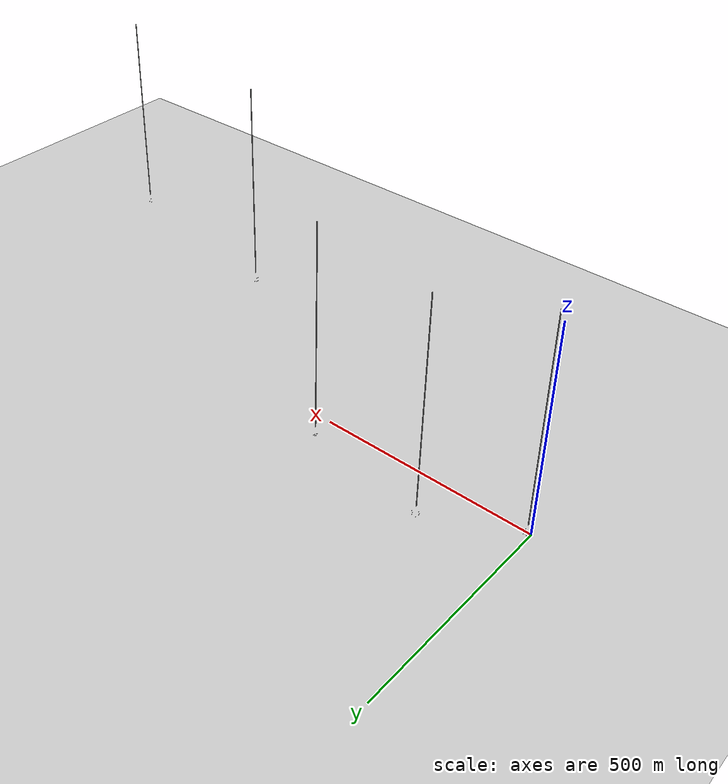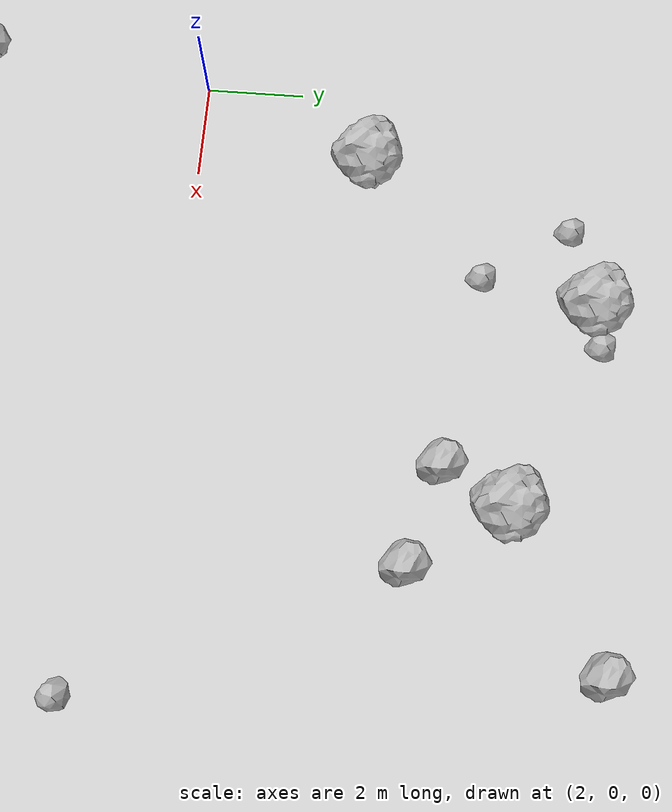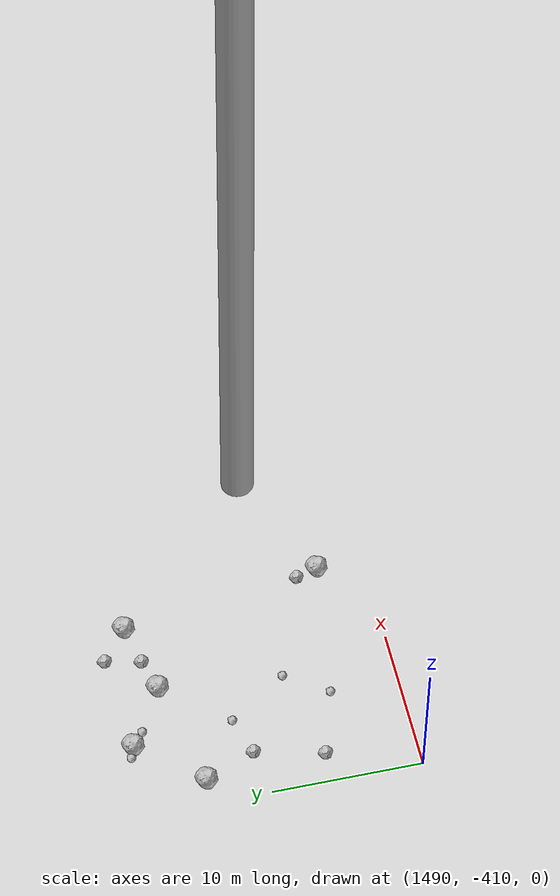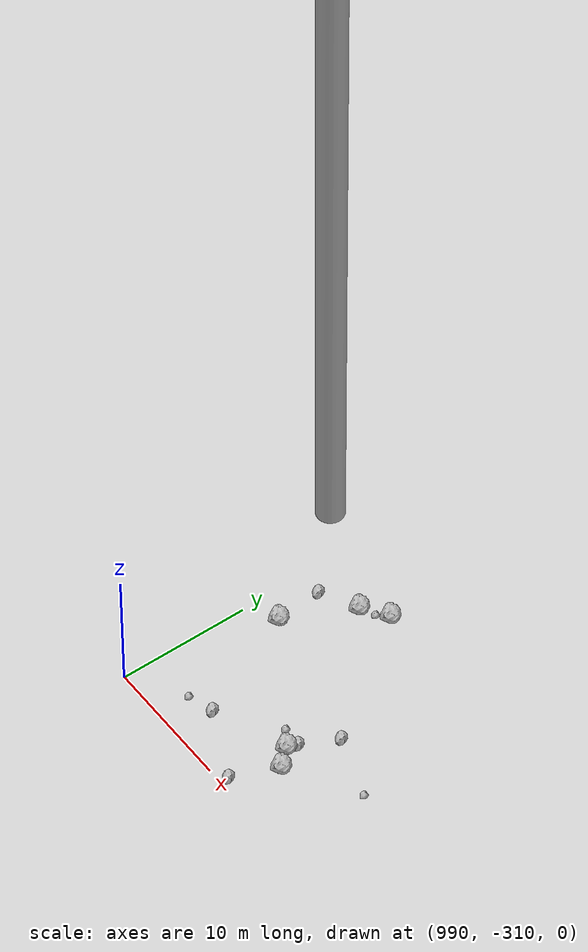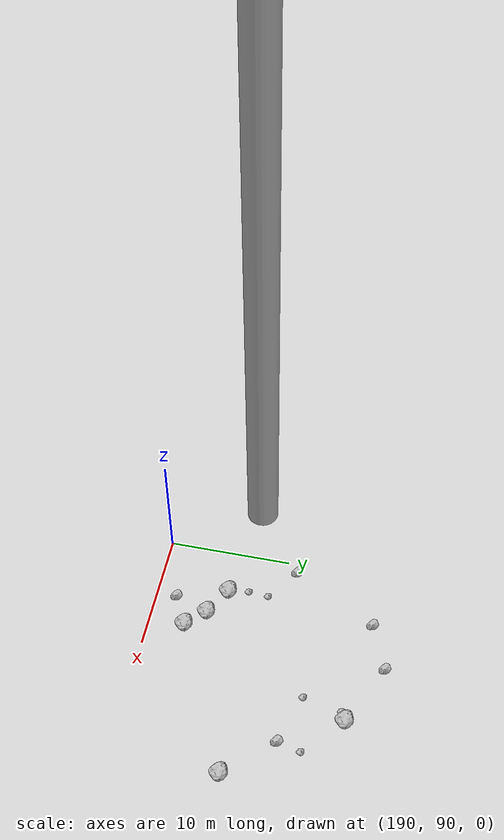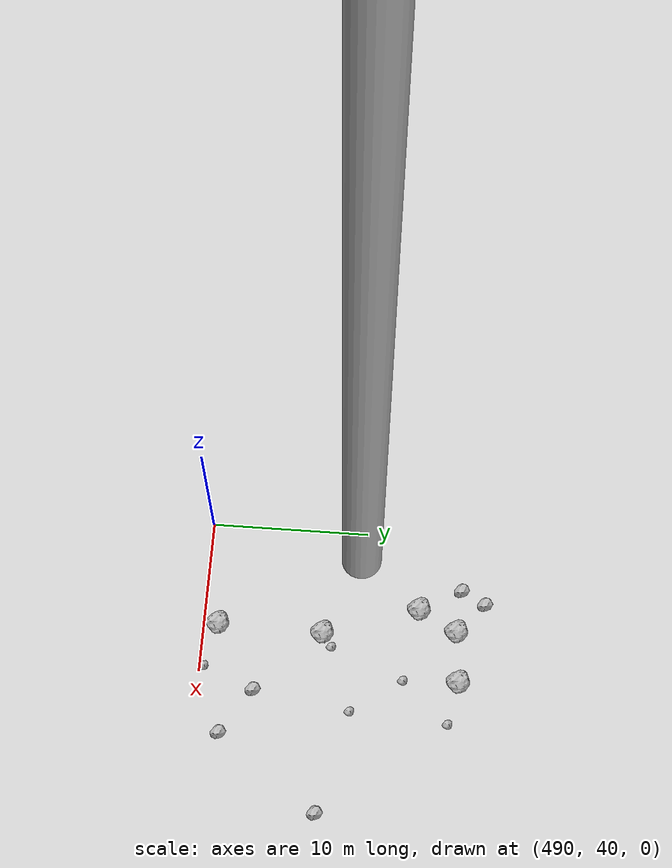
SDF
<?xml version="1.0" ?>
<sdf version="1.6">
  <world name="default">

    <include>
      <uri>model://custom_ground</uri>
    </include>

    <include>
      <uri>model://sun</uri>
    </include>

    <spherical_coordinates>
      <surface_model>EARTH_WGS84</surface_model>
      <latitude_deg>38.161479</latitude_deg>
      <longitude_deg>-122.454630</longitude_deg>
      <elevation>488.0</elevation>
      <heading_deg>90</heading_deg>
    </spherical_coordinates>

    <model name="rock1_0_0">
      <include>
        <uri>model://rock1</uri>
        <pose>6.4729485477745925 8.17944199042487 0.5 0 0 0</pose>
      </include>
    </model>
    <model name="rock1_0_1">
      <include>
        <uri>model://rock1</uri>
        <pose>7.802292365282204 -8.955085867270379 0.5 0 0 0</pose>
      </include>
    </model>
    <model name="rock1_0_2">
      <include>
        <uri>model://rock1</uri>
        <pose>10.700904663249549 6.660742370795877 0.5 0 0 0</pose>
      </include>
    </model>
    <model name="rock1_0_3">
      <include>
        <uri>model://rock1</uri>
        <pose>16.52597437280943 -5.5340290364576195 0.5 0 0 0</pose>
      </include>
    </model>
    <model name="rock1_0_4">
      <include>
        <uri>model://rock1</uri>
        <pose>3.557331634425709 3.4643379551292774 0.5 0 0 0</pose>
      </include>
    </model>
    <model name="rock2_0_0">
      <include>
        <uri>model://rock2</uri>
        <pose>11.895251033619612 4.796920991674918 0.3 0 0 0</pose>
      </include>
    </model>
    <model name="rock2_0_1">
      <include>
        <uri>model://rock2</uri>
        <pose>1.3663902439959785 -4.766722542907087 0.3 0 0 0</pose>
      </include>
    </model>
    <model name="rock2_0_2">
      <include>
        <uri>model://rock2</uri>
        <pose>11.91989134865618 -7.49626740748093 0.3 0 0 0</pose>
      </include>
    </model>
    <model name="rock2_0_3">
      <include>
        <uri>model://rock2</uri>
        <pose>9.890118101921804 5.36994191891675 0.3 0 0 0</pose>
      </include>
    </model>
    <model name="rock2_0_4">
      <include>
        <uri>model://rock2</uri>
        <pose>13.698772273124685 8.560021871865466 0.3 0 0 0</pose>
      </include>
    </model>
    <model name="rock3_0_0">
      <include>
        <uri>model://rock3</uri>
        <pose>14.73504711529486 -1.4024015628625204 0.2 0 0 0</pose>
      </include>
    </model>
    <model name="rock3_0_1">
      <include>
        <uri>model://rock3</uri>
        <pose>7.281230380828387 8.347130511355282 0.2 0 0 0</pose>
      </include>
    </model>
    <model name="rock3_0_2">
      <include>
        <uri>model://rock3</uri>
        <pose>8.830609864610054 -4.895311287984305 0.2 0 0 0</pose>
      </include>
    </model>
    <model name="rock3_0_3">
      <include>
        <uri>model://rock3</uri>
        <pose>4.826071262134057 7.680133074776059 0.2 0 0 0</pose>
      </include>
    </model>
    <model name="rock3_0_4">
      <include>
        <uri>model://rock3</uri>
        <pose>5.960465594441963 5.932363768196865 0.2 0 0 0</pose>
      </include>
    </model>
    <model name="rock1_1_0">
      <include>
        <uri>model://rock1</uri>
        <pose>209.79594746012745 98.60497167441494 0.5 0 0 0</pose>
      </include>
    </model>
    <model name="rock1_1_1">
      <include>
        <uri>model://rock1</uri>
        <pose>193.96344192900025 95.69330140887264 0.5 0 0 0</pose>
      </include>
    </model>
    <model name="rock1_1_2">
      <include>
        <uri>model://rock1</uri>
        <pose>197.7389055860168 92.90591280119105 0.5 0 0 0</pose>
      </include>
    </model>
    <model name="rock1_1_3">
      <include>
        <uri>model://rock1</uri>
        <pose>196.25607644888598 94.40709636472424 0.5 0 0 0</pose>
      </include>
    </model>
    <model name="rock1_1_4">
      <include>
        <uri>model://rock1</uri>
        <pose>203.661343208187 107.0090305846403 0.5 0 0 0</pose>
      </include>
    </model>
    <model name="rock2_1_0">
      <include>
        <uri>model://rock2</uri>
        <pose>194.70621206016764 107.8213366234203 0.3 0 0 0</pose>
      </include>
    </model>
    <model name="rock2_1_1">
      <include>
        <uri>model://rock2</uri>
        <pose>206.3207296553488 102.33066980479306 0.3 0 0 0</pose>
      </include>
    </model>
    <model name="rock2_1_2">
      <include>
        <uri>model://rock2</uri>
        <pose>190.9251826464805 100.92357443562287 0.3 0 0 0</pose>
      </include>
    </model>
    <model name="rock2_1_3">
      <include>
        <uri>model://rock2</uri>
        <pose>198.51621813819798 109.38756583490786 0.3 0 0 0</pose>
      </include>
    </model>
    <model name="rock2_1_4">
      <include>
        <uri>model://rock2</uri>
        <pose>195.17934006078053 91.67344029935262 0.3 0 0 0</pose>
      </include>
    </model>
    <model name="rock3_1_0">
      <include>
        <uri>model://rock3</uri>
        <pose>202.83607288607678 106.63683890202671 0.2 0 0 0</pose>
      </include>
    </model>
    <model name="rock3_1_1">
      <include>
        <uri>model://rock3</uri>
        <pose>193.5743503915914 97.3270806312434 0.2 0 0 0</pose>
      </include>
    </model>
    <model name="rock3_1_2">
      <include>
        <uri>model://rock3</uri>
        <pose>193.67398153468991 98.96748143281238 0.2 0 0 0</pose>
      </include>
    </model>
    <model name="rock3_1_3">
      <include>
        <uri>model://rock3</uri>
        <pose>202.20973887334054 103.51066436020761 0.2 0 0 0</pose>
      </include>
    </model>
    <model name="rock3_1_4">
      <include>
        <uri>model://rock3</uri>
        <pose>206.78195654525237 104.20062761423787 0.2 0 0 0</pose>
      </include>
    </model>
    <model name="rock1_2_0">
      <include>
        <uri>model://rock1</uri>
        <pose>495.1401527329163 53.52427917520167 0.5 0 0 0</pose>
      </include>
    </model>
    <model name="rock1_2_1">
      <include>
        <uri>model://rock1</uri>
        <pose>499.7841519240271 56.17960816049455 0.5 0 0 0</pose>
      </include>
    </model>
    <model name="rock1_2_2">
      <include>
        <uri>model://rock1</uri>
        <pose>496.89729160775414 40.919038467633634 0.5 0 0 0</pose>
      </include>
    </model>
    <model name="rock1_2_3">
      <include>
        <uri>model://rock1</uri>
        <pose>496.4812218612903 55.9320742571808 0.5 0 0 0</pose>
      </include>
    </model>
    <model name="rock1_2_4">
      <include>
        <uri>model://rock1</uri>
        <pose>497.0826795279739 47.52634575649451 0.5 0 0 0</pose>
      </include>
    </model>
    <model name="rock2_2_0">
      <include>
        <uri>model://rock2</uri>
        <pose>501.0112428926839 43.506350938951016 0.3 0 0 0</pose>
      </include>
    </model>
    <model name="rock2_2_1">
      <include>
        <uri>model://rock2</uri>
        <pose>503.89221657747805 41.63768973066354 0.3 0 0 0</pose>
      </include>
    </model>
    <model name="rock2_2_2">
      <include>
        <uri>model://rock2</uri>
        <pose>494.4523412512377 57.706265704232834 0.3 0 0 0</pose>
      </include>
    </model>
    <model name="rock2_2_3">
      <include>
        <uri>model://rock2</uri>
        <pose>508.52468878492357 47.92920243312202 0.3 0 0 0</pose>
      </include>
    </model>
    <model name="rock2_2_4">
      <include>
        <uri>model://rock2</uri>
        <pose>493.61015779702217 56.20033340093187 0.3 0 0 0</pose>
      </include>
    </model>
    <model name="rock3_2_0">
      <include>
        <uri>model://rock3</uri>
        <pose>499.7935756648087 52.73500965697544 0.2 0 0 0</pose>
      </include>
    </model>
    <model name="rock3_2_1">
      <include>
        <uri>model://rock3</uri>
        <pose>502.43596380848885 55.64094333550074 0.2 0 0 0</pose>
      </include>
    </model>
    <model name="rock3_2_2">
      <include>
        <uri>model://rock3</uri>
        <pose>497.87311073776783 48.141954863804145 0.2 0 0 0</pose>
      </include>
    </model>
    <model name="rock3_2_3">
      <include>
        <uri>model://rock3</uri>
        <pose>499.63370481802 40.27139465190556 0.2 0 0 0</pose>
      </include>
    </model>
    <model name="rock3_2_4">
      <include>
        <uri>model://rock3</uri>
        <pose>502.0078225457438 49.54895483048956 0.2 0 0 0</pose>
      </include>
    </model>
    <model name="rock1_3_0">
      <include>
        <uri>model://rock1</uri>
        <pose>1002.7351178061875 -306.05673626551084 0.5 0 0 0</pose>
      </include>
    </model>
    <model name="rock1_3_1">
      <include>
        <uri>model://rock1</uri>
        <pose>994.8253198237597 -293.5769934520015 0.5 0 0 0</pose>
      </include>
    </model>
    <model name="rock1_3_2">
      <include>
        <uri>model://rock1</uri>
        <pose>996.6994001528071 -292.2921537357399 0.5 0 0 0</pose>
      </include>
    </model>
    <model name="rock1_3_3">
      <include>
        <uri>model://rock1</uri>
        <pose>1001.5786210367341 -304.77408524067084 0.5 0 0 0</pose>
      </include>
    </model>
    <model name="rock1_3_4">
      <include>
        <uri>model://rock1</uri>
        <pose>992.2859584376602 -298.60652955143036 0.5 0 0 0</pose>
      </include>
    </model>
    <model name="rock2_3_0">
      <include>
        <uri>model://rock2</uri>
        <pose>991.9908193932906 -295.0142362568821 0.3 0 0 0</pose>
      </include>
    </model>
    <model name="rock2_3_1">
      <include>
        <uri>model://rock2</uri>
        <pose>1001.2900507979209 -309.41783211303465 0.3 0 0 0</pose>
      </include>
    </model>
    <model name="rock2_3_2">
      <include>
        <uri>model://rock2</uri>
        <pose>996.0423557840285 -306.958407695686 0.3 0 0 0</pose>
      </include>
    </model>
    <model name="rock2_3_3">
      <include>
        <uri>model://rock2</uri>
        <pose>1003.1784079281227 -301.3610585410941 0.3 0 0 0</pose>
      </include>
    </model>
    <model name="rock2_3_4">
      <include>
        <uri>model://rock2</uri>
        <pose>1001.8310796860029 -304.0074622677005 0.3 0 0 0</pose>
      </include>
    </model>
    <model name="rock3_3_0">
      <include>
        <uri>model://rock3</uri>
        <pose>1007.8473708989507 -302.9929283791208 0.2 0 0 0</pose>
      </include>
    </model>
    <model name="rock3_3_1">
      <include>
        <uri>model://rock3</uri>
        <pose>995.8741628393342 -293.03562725429555 0.2 0 0 0</pose>
      </include>
    </model>
    <model name="rock3_3_2">
      <include>
        <uri>model://rock3</uri>
        <pose>994.0304327450519 -307.53265049407327 0.2 0 0 0</pose>
      </include>
    </model>
    <model name="rock3_3_3">
      <include>
        <uri>model://rock3</uri>
        <pose>1000.2256583888224 -303.90710877156835 0.2 0 0 0</pose>
      </include>
    </model>
    <model name="rock3_3_4">
      <include>
        <uri>model://rock3</uri>
        <pose>1002.6039324147673 -306.2826069365397 0.2 0 0 0</pose>
      </include>
    </model>
    <model name="rock1_4_0">
      <include>
        <uri>model://rock1</uri>
        <pose>1506.3269150955489 -406.7531894069118 0.5 0 0 0</pose>
      </include>
    </model>
    <model name="rock1_4_1">
      <include>
        <uri>model://rock1</uri>
        <pose>1499.2995546428208 -394.4218425891547 0.5 0 0 0</pose>
      </include>
    </model>
    <model name="rock1_4_2">
      <include>
        <uri>model://rock1</uri>
        <pose>1495.2427638025638 -391.98564813795326 0.5 0 0 0</pose>
      </include>
    </model>
    <model name="rock1_4_3">
      <include>
        <uri>model://rock1</uri>
        <pose>1491.7674159052463 -396.0720371549458 0.5 0 0 0</pose>
      </include>
    </model>
    <model name="rock1_4_4">
      <include>
        <uri>model://rock1</uri>
        <pose>1504.3080302624376 -393.16846045799326 0.5 0 0 0</pose>
      </include>
    </model>
    <model name="rock2_4_0">
      <include>
        <uri>model://rock2</uri>
        <pose>1502.013047563214 -391.4393636370219 0.3 0 0 0</pose>
      </include>
    </model>
    <model name="rock2_4_1">
      <include>
        <uri>model://rock2</uri>
        <pose>1493.116520706356 -399.4610374862874 0.3 0 0 0</pose>
      </include>
    </model>
    <model name="rock2_4_2">
      <include>
        <uri>model://rock2</uri>
        <pose>1505.8412963663568 -405.2764801854148 0.3 0 0 0</pose>
      </include>
    </model>
    <model name="rock2_4_3">
      <include>
        <uri>model://rock2</uri>
        <pose>1501.4843237995594 -393.8043970395164 0.3 0 0 0</pose>
      </include>
    </model>
    <model name="rock2_4_4">
      <include>
        <uri>model://rock2</uri>
        <pose>1492.0201647064828 -403.9761574230306 0.3 0 0 0</pose>
      </include>
    </model>
    <model name="rock3_4_0">
      <include>
        <uri>model://rock3</uri>
        <pose>1494.3919867129746 -391.7447006105643 0.2 0 0 0</pose>
      </include>
    </model>
    <model name="rock3_4_1">
      <include>
        <uri>model://rock3</uri>
        <pose>1496.5352487214052 -405.4229522241524 0.2 0 0 0</pose>
      </include>
    </model>
    <model name="rock3_4_2">
      <include>
        <uri>model://rock3</uri>
        <pose>1496.1735831294632 -392.806251439991 0.2 0 0 0</pose>
      </include>
    </model>
    <model name="rock3_4_3">
      <include>
        <uri>model://rock3</uri>
        <pose>1498.4210083358655 -402.63478227996796 0.2 0 0 0</pose>
      </include>
    </model>
    <model name="rock3_4_4">
      <include>
        <uri>model://rock3</uri>
        <pose>1495.7637097554966 -398.6889547288187 0.2 0 0 0</pose>
      </include>
    </model>

    <model name="cylinder_1">
      <static>true</static>
      <link name="link">
        <visual name="visual">
          <geometry>
            <cylinder>
              <radius>1</radius>
              <length>500</length>
            </cylinder>
          </geometry>
        </visual>
      </link>
      <pose>10 0 270 0 0 0</pose>
    </model>

    <model name="cylinder_2">
      <static>true</static>
      <link name="link">
        <visual name="visual">
          <geometry>
            <cylinder>
              <radius>1</radius>
              <length>500</length>
            </cylinder>
          </geometry>
        </visual>
      </link>
      <pose>200 100 270 0 0 0</pose>
    </model>

    <model name="cylinder_3">
      <static>true</static>
      <link name="link">
        <visual name="visual">
          <geometry>
            <cylinder>
              <radius>1</radius>
              <length>500</length>
            </cylinder>
          </geometry>
        </visual>
      </link>
      <pose>500 50 270 0 0 0</pose>
    </model>

    <model name="cylinder_4">
      <static>true</static>
      <link name="link">
        <visual name="visual">
          <geometry>
            <cylinder>
              <radius>1</radius>
              <length>500</length>
            </cylinder>
          </geometry>
        </visual>
      </link>
      <pose>1000 -300 270 0 0 0</pose>
    </model>

    <model name="cylinder_5">
      <static>true</static>
      <link name="link">
        <visual name="visual">
          <geometry>
            <cylinder>
              <radius>1</radius>
              <length>500</length>
            </cylinder>
          </geometry>
        </visual>
      </link>
      <pose>1500 -400 270 0 0 0</pose>
    </model>

  </world>
</sdf>

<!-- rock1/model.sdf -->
<sdf version="1.6">
  <model name="rock1">
    <static>true</static> <!-- Set to true if the model should not move -->
    <pose>0 0 0 0 0 0</pose>

    <!--z offset is 0.5 for full scale-->

    <link name="link">
      <collision name="rock1_collision">
        <geometry>
          <mesh>
            <uri>model://meshes/rock1.dae</uri>
          </mesh>
        </geometry>
      </collision>
      <visual name="rock1_visual">
        <geometry>
          <mesh>
            <uri>model://meshes/rock1.dae</uri>
          </mesh>
        </geometry>
        <material>
          <script>
            <uri>model://materials/scripts/sand_pebbles.material</uri>
            <name>custom_ground/Image</name>
          </script>
        </material>
      </visual>
    </link>
  </model>
</sdf>

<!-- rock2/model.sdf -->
<sdf version="1.6">
  <model name="rock2">
    <static>true</static> <!-- Set to true if the model should not move -->
    <pose>0 0 0 0 0 0</pose>

    <!--z offset is 0.3 for full scale-->

    <link name="link">
      <collision name="rock2_collision">
        <geometry>
          <mesh>
            <uri>model://meshes/rock2.dae</uri>
          </mesh>
        </geometry>
      </collision>
      <visual name="rock2_visual">
        <geometry>
          <mesh>
            <uri>model://meshes/rock2.dae</uri>
          </mesh>
        </geometry>
        <material>
          <script>
            <uri>model://materials/scripts/sand_pebbles.material</uri>
            <name>custom_ground/Image</name>
          </script>
        </material>
      </visual>
    </link>
  </model>
</sdf>

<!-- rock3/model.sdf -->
<sdf version="1.6">
  <model name="rock3">
    <static>true</static> <!-- Set to true if the model should not move -->
    <pose>0 0 0 0 0 0</pose>

    <!--z offset is 0.2 for full scale-->

    <link name="link">
      <collision name="rock3_collision">
        <geometry>
          <mesh>
            <uri>model://meshes/rock3.dae</uri>
          </mesh>
        </geometry>
      </collision>
      <visual name="rock3_visual">
        <geometry>
          <mesh>
            <uri>model://meshes/rock3.dae</uri>
          </mesh>
        </geometry>
        <material>
          <script>
            <uri>model://materials/scripts/sand_pebbles.material</uri>
            <name>custom_ground/Image</name>
          </script>
        </material>
      </visual>
    </link>
  </model>
</sdf>

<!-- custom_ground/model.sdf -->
<sdf version="1.6">
  <model name="custom_ground">
    <static>true</static> <!-- Ground is static and immovable -->
    <link name="ground_link">
      <pose>240 0 0 0 0 0</pose> <!-- Position and orientation relative to the world -->
      <!-- Visual Representation -->
      <visual name="ground_visual">
        <geometry>
          <plane>
            <normal>0 0 1</normal> <!-- Upward facing plane -->
            <size>500 500</size> <!-- Size of the plane -->
          </plane>
        </geometry>
        <material>
          <script>
            <uri>model://materials/scripts/sand_pebbles.material</uri>
            <name>custom_ground/Image</name>
          </script>
        </material>
      </visual>

      <!-- Collision Representation -->
      <collision name="ground_collision">
        <geometry>
          <plane>
            <normal>0 0 1</normal>
            <size>100 100</size>
          </plane>
        </geometry>
      </collision>

    </link>
  </model>
</sdf>
